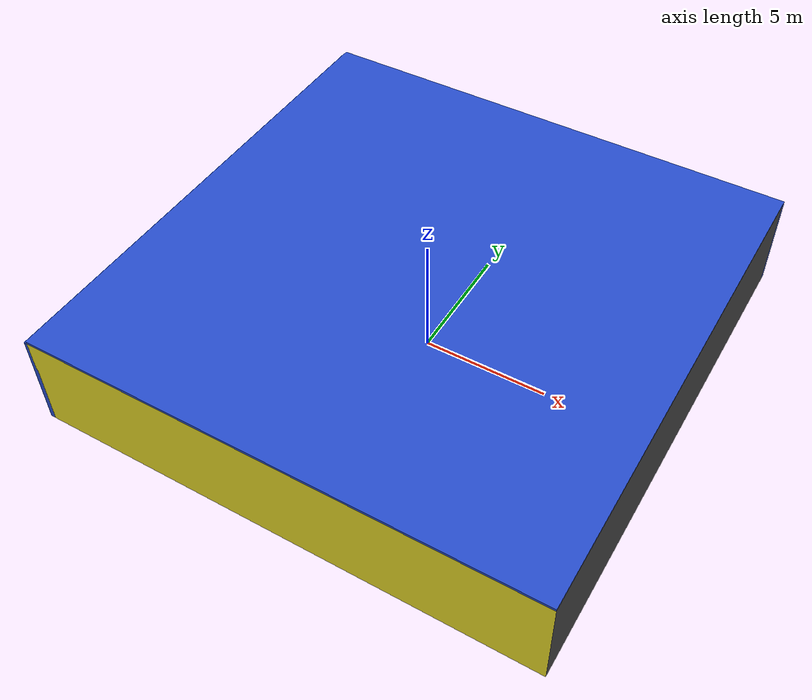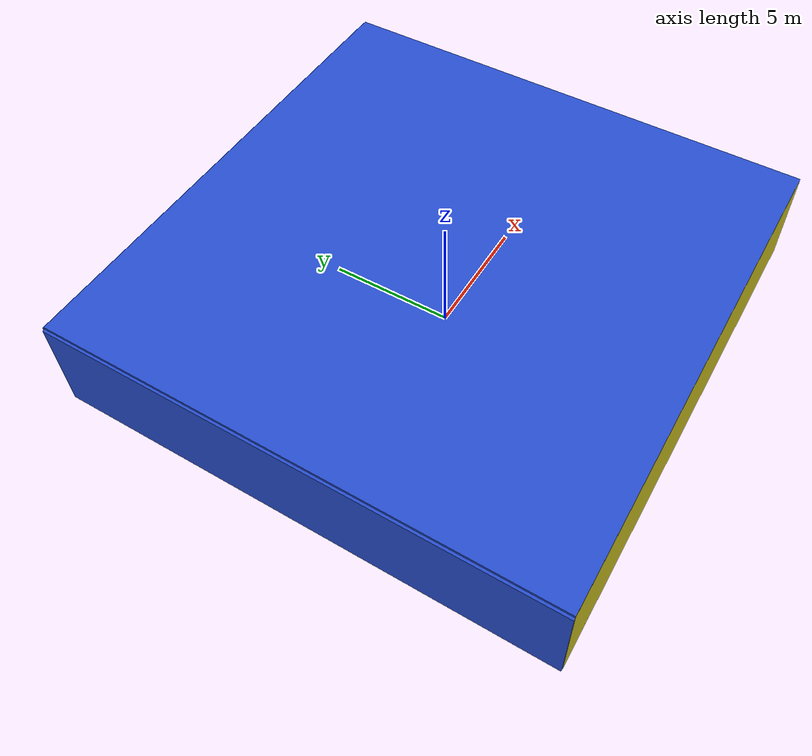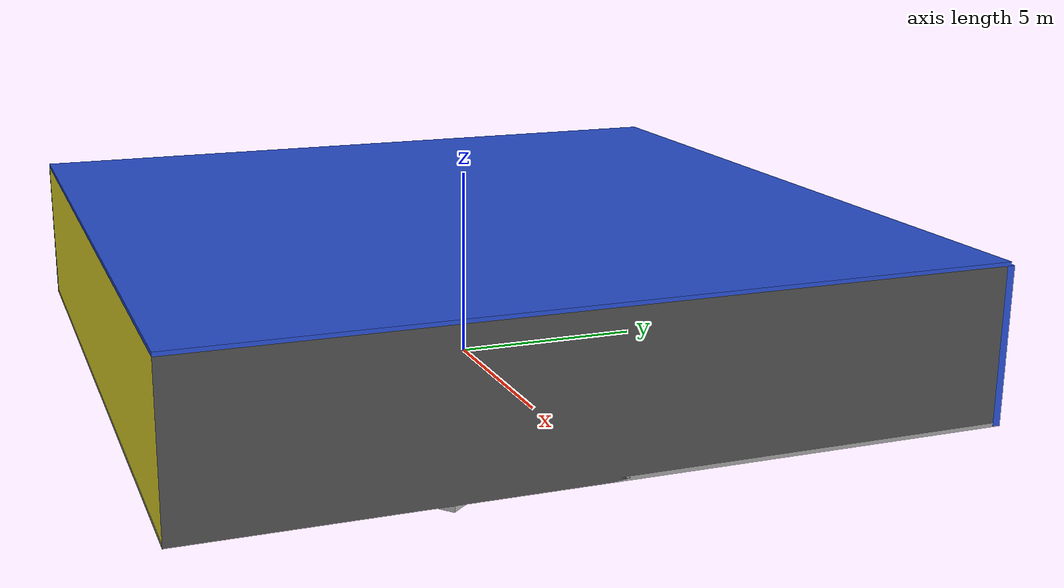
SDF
<sdf version="1.4">
 <world name="default">
  <physics type="ode">
   <max_step_size>0.001</max_step_size>
   <real_time_factor>1</real_time_factor>
   <real_time_update_rate>1000</real_time_update_rate>
   <gravity>0 0 -9.8</gravity>
  </physics>
  <scene><ambient>0.4 0.4 0.4 1</ambient><background>0.7 0.7 0.7 1</background><shadows>1</shadows></scene>
  <model name="Surrounding">
   <static>1</static>
   <link name="Ceiling">
    <collision name="Ceiling_Collision"><geometry><box><size>20 20 0.1</size></box></geometry></collision>
    <visual name="Ceiling_Visual">
     <geometry><box><size>20 20 0.1</size></box></geometry>
     <material>
      <script><uri>file://media/materials/scripts/gazebo.material</uri><name>Gazebo/Blue</name></script>
     </material>
    </visual>
    <pose>0 0 4.05 0 0 0</pose>
   </link>
   <link name="Wall_South">
    <collision name="Wall_South_Collision">
     <geometry><box><size>20 0 4</size></box></geometry>
     <pose>0 0 2 0 -0 0</pose>
    </collision>
    <visual name="Wall_South_Visual">
     <pose>0 0 2 0 -0 0</pose>
     <geometry><box><size>20 0 4</size></box></geometry>
     <material>
      <script><uri>file://media/materials/scripts/gazebo.material</uri><name>Gazebo/Yellow</name></script>
     </material>
    </visual>
    <velocity_decay><linear>0</linear><angular>0</angular></velocity_decay>
    <pose>0 -10 0 0 -0 0</pose>
   </link>
   <link name="Wall_East">
    <collision name="Wall_21_Collision">
     <geometry><box><size>20 0 4</size></box></geometry>
     <pose>0 0 2 0 -0 0</pose>
    </collision>
    <visual name="Wall_21_Visual">
     <pose>0 0 2 0 -0 0</pose>
     <geometry><box><size>20 0 4</size></box></geometry>
     <material>
      <script><uri>file://media/materials/scripts/gazebo.material</uri><name>Gazebo/Road</name></script>
     </material>
    </visual>
    <velocity_decay><linear>0</linear><angular>0</angular></velocity_decay>
    <pose>10 0 0 0 -0 1.5708</pose>
   </link>
   <link name="Wall_North">
    <collision name="Wall_22_Collision">
     <geometry><box><size>20 0.2 4</size></box></geometry>
     <pose>0 0 2 0 -0 0</pose>
    </collision>
    <visual name="Wall_22_Visual">
     <pose>0 0 2 0 -0 0</pose>
     <geometry><box><size>20 0.2 4</size></box></geometry>
     <material>
      <script><uri>file://media/materials/scripts/gazebo.material</uri><name>Gazebo/BlueLaser</name></script>
     </material>
    </visual>
    <velocity_decay><linear>0</linear><angular>0</angular></velocity_decay>
    <pose>0 10 0 0 -0 0</pose>
   </link>
   <link name="Wall_West">
    <collision name="Wall_23_Collision">
     <geometry><box><size>20 0.2 4</size></box></geometry>
     <pose>0 0 2 0 -0 0</pose>
    </collision>
    <visual name="Wall_23_Visual">
     <pose>0 0 2 0 -0 0</pose>
     <geometry><box><size>20 0.2 4</size></box></geometry>
     <material>
      <script><uri>file://media/materials/scripts/gazebo.material</uri><name>Gazebo/BlueGlow</name></script>
     </material>
    </visual>
    <velocity_decay><linear>0</linear><angular>0</angular></velocity_decay>
    <pose>-10 0 0 0 0 -1.5708</pose>
   </link>
   <link name="Ground_link">
    <collision name="collision">
     <pose>0 0 .05 0 -0 0</pose>
     <geometry><box><size>20 20 0.1</size></box></geometry>
    </collision>
    <visual name="visual">
     <pose>0 0 .05 0 -0 0</pose>
     <geometry><box><size>20 20 0.1</size></box></geometry>
     <material>
      <script><uri>file://media/materials/scripts/gazebo.material</uri><name>Gazebo/GreyGradientSky</name></script>
     </material>
    </visual>
   </link>
   <static>1</static>
  </model>
  <spherical_coordinates>
   <surface_model>EARTH_WGS84</surface_model>
   <latitude_deg>0</latitude_deg>
   <longitude_deg>0</longitude_deg>
   <elevation>0</elevation>
   <heading_deg>0</heading_deg>
  </spherical_coordinates>
  <light name="lightball_0" type="diffuse">
   <diffuse>0.8 0.8 0.8 1</diffuse>
   <specular>0.2 0.2 0.2 1</specular>
   <attenuation>
    <range>100</range>
    <constant>0.7</constant>
    <linear>0.01</linear>
    <quadratic>0.001</quadratic>
   </attenuation>
   <direction>-0.5 0.1 -0.9</direction>
   <pose>-0.556024562873 9.89355754755 2.69777270382 0 0 0</pose>
  </light>
  <light name="lightball_1" type="diffuse">
   <diffuse>0.8 0.8 0.8 1</diffuse>
   <specular>0.2 0.2 0.2 1</specular>
   <attenuation>
    <range>100</range>
    <constant>0.7</constant>
    <linear>0.01</linear>
    <quadratic>0.001</quadratic>
   </attenuation>
   <direction>-0.5 0.1 -0.9</direction>
   <pose>2.95603718087 -2.74076123595 3.40111305222 0 0 0</pose>
  </light>
  <light name="lightball_2" type="diffuse">
   <diffuse>0.8 0.8 0.8 1</diffuse>
   <specular>0.2 0.2 0.2 1</specular>
   <attenuation>
    <range>100</range>
    <constant>0.7</constant>
    <linear>0.01</linear>
    <quadratic>0.001</quadratic>
   </attenuation>
   <direction>-0.5 0.1 -0.9</direction>
   <pose>3.25457611189 -5.74032973432 1.68425356452 0 0 0</pose>
  </light>
  <include>
   <uri>model://textured_shapes</uri>
   <pose>-3.49486476435 -4.11164124162 0 0 0 2.86548426134</pose>
  </include>
  <include><uri>model://cabinet</uri><pose>-1.55020345577 -0.363107265225 0 0 0 2.96674115462</pose></include>
  <include>
   <uri>model://textured_shapes</uri>
   <pose>-1.54501413096 6.94751285452 0 0 0 1.22529109203</pose>
  </include>
  <include>
   <uri>model://robocup_3Dsim_goal</uri>
   <pose>1.97124275387 0.919060583073 0 0 0 1.76160847452</pose>
  </include>
  <include>
   <uri>model://robocup_3Dsim_goal</uri>
   <pose>4.45875384762 -5.21215750664 0 0 0 1.59552297202</pose>
  </include>
  <include>
   <uri>model://textured_shapes</uri>
   <pose>7.5885668258 -2.37232179776 0 0 0 0.699516519768</pose>
  </include>
  <include><uri>model://table</uri><pose>6.44882046973 4.57056163805 0 0 0 2.72175710715</pose></include>
 </world>
</sdf>

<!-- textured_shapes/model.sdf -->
<sdf version="1.6">
  <model name="textured_shapes">
    <pose>0 0 0.5 0 0 0</pose>
    <link name="box">
      <pose>0 -1.5 0 0 0 0</pose>
      <collision name="collision">
        <geometry>
          <box>
            <size>1 1 1</size>
          </box>
        </geometry>
      </collision>
      <visual name="visual">
        <geometry>
          <box>
            <size>1 1 1</size>
          </box>
        </geometry>
        <material>
          <script>
            <uri>model://../model_source/models/textured_shapes/materials/scripts</uri>
            <uri>model://../model_source/models/textured_shapes/materials/textures</uri>
            <name>TexturedShape/Squares</name>
          </script>
        </material>
      </visual>
    </link>
    <link name="sphere">
      <collision name="collision">
        <geometry>
          <sphere>
            <radius>0.5</radius>
          </sphere>
        </geometry>
      </collision>
      <visual name="visual">
        <geometry>
          <sphere>
            <radius>0.5</radius>
          </sphere>
        </geometry>
        <material>
          <script>
            <uri>model://../model_source/models/textured_shapes/materials/scripts</uri>
            <uri>model://../model_source/models/textured_shapes/materials/textures</uri>
            <name>TexturedShape/Squares</name>
          </script>
        </material>
      </visual>
    </link>
    <link name="cylinder">
      <pose>0 1.5 0 0 0 0</pose>
      <collision name="collision">
        <geometry>
          <cylinder>
            <radius>0.5</radius>
            <length>1</length>
          </cylinder>
        </geometry>
      </collision>
      <visual name="visual">
        <geometry>
          <cylinder>
            <radius>0.5</radius>
            <length>1</length>
          </cylinder>
        </geometry>
        <material>
          <script>
            <uri>model://../model_source/models/textured_shapes/materials/scripts</uri>
            <uri>model://../model_source/models/textured_shapes/materials/textures</uri>
            <name>TexturedShape/Squares</name>
          </script>
        </material>
      </visual>
    </link>
  </model>
</sdf>

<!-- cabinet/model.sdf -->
<sdf version="1.5">
  <model name="cabinet">
    <static>true</static>
    <link name="cabinet_bottom_plate">
      <inertial>
        <pose>0 0 -1 0 0 0</pose>
        <inertia>
          <ixx>2.050000</ixx>
          <ixy>0</ixy>
          <ixz>0</ixz>
          <iyy>2.050000</iyy>
          <iyz>0</iyz>
          <izz>2.050000</izz>
        </inertia>
        <mass>25.000000</mass>
      </inertial>
      <collision name="cabinet_bottom_plate_geom">
        <pose>0 0 0.010000 0 0 0</pose>
        <geometry>
          <box>
            <size>0.450000 0.450000 0.020000</size>
          </box>
        </geometry>
      </collision>
      <visual name="cabinet_bottom_plate_geom_visual">
        <pose>0 0 0.010000 0 0 0</pose>
        <geometry>
          <box>
            <size>0.450000 0.450000 0.020000</size>
          </box>
        </geometry>
        <material>
          <script>
            <uri>model://media/materials/scripts/gazebo.material</uri>
            <name>Gazebo/Wood</name>
          </script>
        </material>
      </visual>
      <collision name="cabinet_bottom_plate_geom_cabinet_back_plate">
        <pose>0.235000 0 0.510000 0 0 0</pose>
        <geometry>
          <box>
            <size>0.020000 0.450000 1.020000</size>
          </box>
        </geometry>
      </collision>
      <visual name="cabinet_bottom_plate_geom_cabinet_back_plate_visual">
        <pose>0.235000 0 0.510000 0 0 0</pose>
        <geometry>
          <box>
            <size>0.020000 0.450000 1.020000</size>
          </box>
        </geometry>
        <material>
          <script>
            <uri>model://media/materials/scripts/gazebo.material</uri>
            <name>Gazebo/Wood</name>
          </script>
        </material>
      </visual>
      <collision name="cabinet_bottom_plate_geom_cabinet_left_plate">
        <pose>0 0.235000 0.510000 0 0 0</pose>
        <geometry>
          <box>
            <size>0.450000 0.020000 1.020000</size>
          </box>
        </geometry>
      </collision>
      <visual name="cabinet_bottom_plate_geom_cabinet_left_plate_visual">
        <pose>0 0.235000 0.510000 0 0 0</pose>
        <geometry>
          <box>
            <size>0.450000 0.020000 1.020000</size>
          </box>
        </geometry>
        <material>
          <script>
            <uri>model://media/materials/scripts/gazebo.material</uri>
            <name>Gazebo/Wood</name>
          </script>
        </material>
      </visual>
      <collision name="cabinet_bottom_plate_geom_cabinet_middle_plate">
        <pose>0 0 0.510000 0 0 0</pose>
        <geometry>
          <box>
            <size>0.450000 0.450000 0.020000</size>
          </box>
        </geometry>
      </collision>
      <visual name="cabinet_bottom_plate_geom_cabinet_middle_plate_visual">
        <pose>0 0 0.510000 0 0 0</pose>
        <geometry>
          <box>
            <size>0.450000 0.450000 0.020000</size>
          </box>
        </geometry>
        <material>
          <script>
            <uri>model://media/materials/scripts/gazebo.material</uri>
            <name>Gazebo/Wood</name>
          </script>
        </material>
      </visual>
      <collision name="cabinet_bottom_plate_geom_cabinet_right_plate">
        <pose>0 -0.235000 0.510000 0 0 0</pose>
        <geometry>
          <box>
            <size>0.450000 0.020000 1.020000</size>
          </box>
        </geometry>
      </collision>
      <visual name="cabinet_bottom_plate_geom_cabinet_right_plate_visual">
        <pose>0 -0.235000 0.510000 0 0 0</pose>
        <geometry>
          <box>
            <size>0.450000 0.020000 1.020000</size>
          </box>
        </geometry>
        <material>
          <script>
            <uri>model://media/materials/scripts/gazebo.material</uri>
            <name>Gazebo/Wood</name>
          </script>
        </material>
      </visual>
      <collision name="cabinet_bottom_plate_geom_cabinet_top_plate">
        <pose>0 0 1.010000 0 0 0</pose>
        <geometry>
          <box>
            <size>0.450000 0.450000 0.020000</size>
          </box>
        </geometry>
      </collision>
      <visual name="cabinet_bottom_plate_geom_cabinet_top_plate_visual">
        <pose>0 0 1.010000 0 0 0</pose>
        <geometry>
          <box>
            <size>0.450000 0.450000 0.020000</size>
          </box>
        </geometry>
        <material>
          <script>
            <uri>model://media/materials/scripts/gazebo.material</uri>
            <name>Gazebo/Wood</name>
          </script>
        </material>
      </visual>
    </link>
  </model>
</sdf>

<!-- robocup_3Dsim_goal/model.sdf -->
<sdf version="1.5">
  <model name="robocup_3d_goal">
    <static>true</static>
    <link name="left_post">
      <pose>0 1.05 0.45 0 0 0</pose>
      <collision name="collision">
        <geometry>
          <cylinder>
            <radius>0.05</radius>
            <length>0.9</length>
          </cylinder>
        </geometry>
      </collision>
      <visual name="visual">
        <geometry>
          <cylinder>
            <radius>0.05</radius>
            <length>0.9</length>
          </cylinder>
        </geometry>
        <material>
          <script>
            <uri>file://media/materials/scripts/gazebo.material</uri>
            <name>Gazebo/ZincYellow</name>
          </script>
        </material>
      </visual>
    </link>
    <link name="left_support_horiz_lower">
      <pose>0.30 1.05 0.01 0 0 0</pose>
      <collision name="collision">
        <geometry>
          <box>
            <size>0.50 0.02 0.02</size>
          </box>
        </geometry>
      </collision>
      <visual name="visual">
        <geometry>
          <box>
            <size>0.50 0.02 0.02</size>
          </box>
        </geometry>
        <material>
          <script>
            <uri>file://media/materials/scripts/gazebo.material</uri>
            <name>Gazebo/White</name>
          </script>
        </material>
      </visual>
    </link>
    <link name="left_support_horiz_upper">
      <pose>0.30 1.05 0.79 0 0 0</pose>
      <collision name="collision">
        <geometry>
          <box>
            <size>0.50 0.02 0.02</size>
          </box>
        </geometry>
      </collision>
      <visual name="visual">
        <geometry>
          <box>
            <size>0.50 0.02 0.02</size>
          </box>
        </geometry>
        <material>
          <script>
            <uri>file://media/materials/scripts/gazebo.material</uri>
            <name>Gazebo/White</name>
          </script>
        </material>
      </visual>
    </link>
    <link name="left_support_vertical">
      <pose>0.56 1.05 0.4 0 1.5708 0</pose>
      <collision name="collision">
        <geometry>
          <box>
            <size>0.80 0.02 0.02</size>
          </box>
        </geometry>
      </collision>
      <visual name="visual">
        <geometry>
          <box>
            <size>0.80 0.02 0.02</size>
          </box>
        </geometry>
        <material>
          <script>
            <uri>file://media/materials/scripts/gazebo.material</uri>
            <name>Gazebo/White</name>
          </script>
        </material>
      </visual>
    </link>
    <link name="right_support_horiz_lower">
      <pose>0.30 -1.05 0.01 0 0 0</pose>
      <collision name="collision">
        <geometry>
          <box>
            <size>0.50 0.02 0.02</size>
          </box>
        </geometry>
      </collision>
      <visual name="visual">
        <geometry>
          <box>
            <size>0.50 0.02 0.02</size>
          </box>
        </geometry>
        <material>
          <script>
            <uri>file://media/materials/scripts/gazebo.material</uri>
            <name>Gazebo/White</name>
          </script>
        </material>
      </visual>
    </link>
    <link name="right_support_horiz_upper">
      <pose>0.30 -1.05 0.79 0 0 0</pose>
      <collision name="collision">
        <geometry>
          <box>
            <size>0.50 0.02 0.02</size>
          </box>
        </geometry>
      </collision>
      <visual name="visual">
        <geometry>
          <box>
            <size>0.50 0.02 0.02</size>
          </box>
        </geometry>
        <material>
          <script>
            <uri>file://media/materials/scripts/gazebo.material</uri>
            <name>Gazebo/White</name>
          </script>
        </material>
      </visual>
    </link>
    <link name="right_support_vertical">
      <pose>0.56 -1.05 0.4 0 1.5708 0</pose>
      <collision name="collision">
        <geometry>
          <box>
            <size>0.80 0.02 0.02</size>
          </box>
        </geometry>
      </collision>
      <visual name="visual">
        <geometry>
          <box>
            <size>0.80 0.02 0.02</size>
          </box>
        </geometry>
        <material>
          <script>
            <uri>file://media/materials/scripts/gazebo.material</uri>
            <name>Gazebo/White</name>
          </script>
        </material>
      </visual>
    </link>
    <link name="center_support_horiz_lower">
      <pose>0.56 0 0.01 0 1.5708 0</pose>
      <collision name="collision">
        <geometry>
          <box>
            <size>0.02 2.08 0.02</size>
          </box>
        </geometry>
      </collision>
      <visual name="visual">
        <geometry>
          <box>
            <size>0.02 2.08 0.02</size>
          </box>
        </geometry>
        <material>
          <script>
            <uri>file://media/materials/scripts/gazebo.material</uri>
            <name>Gazebo/White</name>
          </script>
        </material>
      </visual>
    </link>
    <link name="center_support_horiz_upper">
      <pose>0.56 0 0.79 0 1.5708 0</pose>
      <collision name="collision">
        <geometry>
          <box>
            <size>0.02 2.08 0.02</size>
          </box>
        </geometry>
      </collision>
      <visual name="visual">
        <geometry>
          <box>
            <size>0.02 2.08 0.02</size>
          </box>
        </geometry>
        <material>
          <script>
            <uri>file://media/materials/scripts/gazebo.material</uri>
            <name>Gazebo/White</name>
          </script>
        </material>
      </visual>
    </link>
    <link name="right_post">
      <pose>0 -1.05 0.45 0 0 0</pose>
      <collision name="collision">
        <geometry>
          <cylinder>
            <radius>0.05</radius>
            <length>0.9</length>
          </cylinder>
        </geometry>
      </collision>
      <visual name="visual">
        <geometry>
          <cylinder>
            <radius>0.05</radius>
            <length>0.9</length>
          </cylinder>
        </geometry>
        <material>
          <script>
            <uri>file://media/materials/scripts/gazebo.material</uri>
            <name>Gazebo/ZincYellow</name>
          </script>
        </material>
      </visual>
    </link>
    <link name="crossbar">
      <pose>0 0 0.85 1.57 1.57 0</pose>
      <collision name="collision">
        <geometry>
          <cylinder>
            <radius>0.05</radius>
            <length>2.0</length>
          </cylinder>
        </geometry>
      </collision>
      <visual name="visual">
        <geometry>
          <cylinder>
            <radius>0.05</radius>
            <length>2.0</length>
          </cylinder>
        </geometry>
        <material>
          <script>
            <uri>file://media/materials/scripts/gazebo.material</uri>
            <name>Gazebo/ZincYellow</name>
          </script>
        </material>
      </visual>
    </link>
    <link name="center_net">
      <pose>0.56 0 0.40 0 0 0</pose>
      <collision name="collision">
        <geometry>
          <box>
            <size>0.01 2.1 0.80</size>
          </box>
        </geometry>
      </collision>
      <visual name="visual">
        <geometry>
          <box>
            <size>0.01 2.1 0.80</size>
          </box>
        </geometry>
        <material>
          <script>
            <uri>model://../model_source/models/robocup09_spl_field/materials/scripts/</uri>
            <uri>model://../model_source/models/robocup09_spl_field/materials/textures/</uri>
            <name>RoboCup/Net</name>
          </script>
        </material>
      </visual>
    </link>
    <link name="left_net">
      <pose>0.30 1.05 0.40 0 0 0</pose>
      <collision name="collision">
        <geometry>
          <box>
            <size>0.50 0.01 0.76</size>
          </box>
        </geometry>
      </collision>
      <visual name="visual">
        <geometry>
          <box>
            <size>0.50 0.01 0.76</size>
          </box>
        </geometry>
        <material>
          <script>
            <uri>model://../model_source/models/robocup09_spl_field/materials/scripts/</uri>
            <uri>model://../model_source/models/robocup09_spl_field/materials/textures/</uri>
            <name>RoboCup/Net</name>
          </script>
        </material>
      </visual>
    </link>
    <link name="right_net">
      <pose>0.30 -1.05 0.40 0 0 0</pose>
      <collision name="collision">
        <geometry>
          <box>
            <size>0.50 0.01 0.76</size>
          </box>
        </geometry>
      </collision>
      <visual name="visual">
        <geometry>
          <box>
            <size>0.50 0.01 0.76</size>
          </box>
        </geometry>
        <material>
          <script>
            <uri>model://../model_source/models/robocup09_spl_field/materials/scripts/</uri>
            <uri>model://../model_source/models/robocup09_spl_field/materials/textures/</uri>
            <name>RoboCup/Net</name>
          </script>
        </material>
      </visual>
    </link>
  </model>
</sdf>

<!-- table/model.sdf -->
<sdf version="1.5">
  <model name="table">
    <static>true</static>
    <link name="link">
      <collision name="surface">
        <pose>0 0 1.0 0 0 0</pose>
        <geometry>
          <box>
            <size>1.5 0.8 0.03</size>
          </box>
        </geometry>
        <surface>
          <friction>
            <ode>
              <mu>0.6</mu>
              <mu2>0.6</mu2>
            </ode>
          </friction>
        </surface>
      </collision>
      <visual name="visual1">
        <pose>0 0 1.0 0 0 0</pose>
        <geometry>
          <box>
            <size>1.5 0.8 0.03</size>
          </box>
        </geometry>
        <material>
          <script>
            <uri>model://media/materials/scripts/gazebo.material</uri>
            <name>Gazebo/Wood</name>
          </script>
        </material>
      </visual>
      <collision name="front_left_leg">
        <pose>0.68 0.38 0.5 0 0 0</pose>
        <geometry>
          <cylinder>
            <radius>0.02</radius>
            <length>1.0</length>
          </cylinder>
        </geometry>
      </collision>
      <visual name="front_left_leg">
        <pose>0.68 0.38 0.5 0 0 0</pose>
        <geometry>
          <cylinder>
            <radius>0.02</radius>
            <length>1.0</length>
          </cylinder>
        </geometry>
        <material>
          <script>
            <uri>model://media/materials/scripts/gazebo.material</uri>
            <name>Gazebo/Grey</name>
          </script>
        </material>
      </visual>
      <collision name="front_right_leg">
        <pose>0.68 -0.38 0.5 0 0 0</pose>
        <geometry>
          <cylinder>
            <radius>0.02</radius>
            <length>1.0</length>
          </cylinder>
        </geometry>
      </collision>
      <visual name="front_right_leg">
        <pose>0.68 -0.38 0.5 0 0 0</pose>
        <geometry>
          <cylinder>
            <radius>0.02</radius>
            <length>1.0</length>
          </cylinder>
        </geometry>
        <material>
          <script>
            <uri>model://media/materials/scripts/gazebo.material</uri>
            <name>Gazebo/Grey</name>
          </script>
        </material>
      </visual>
      <collision name="back_right_leg">
        <pose>-0.68 -0.38 0.5 0 0 0</pose>
        <geometry>
          <cylinder>
            <radius>0.02</radius>
            <length>1.0</length>
          </cylinder>
        </geometry>
      </collision>
      <visual name="back_right_leg">
        <pose>-0.68 -0.38 0.5 0 0 0</pose>
        <geometry>
          <cylinder>
            <radius>0.02</radius>
            <length>1.0</length>
          </cylinder>
        </geometry>
        <material>
          <script>
            <uri>model://media/materials/scripts/gazebo.material</uri>
            <name>Gazebo/Grey</name>
          </script>
        </material>
      </visual>
      <collision name="back_left_leg">
        <pose>-0.68 0.38 0.5 0 0 0</pose>
        <geometry>
          <cylinder>
            <radius>0.02</radius>
            <length>1.0</length>
          </cylinder>
        </geometry>
      </collision>
      <visual name="back_left_leg">
        <pose>-0.68 0.38 0.5 0 0 0</pose>
        <geometry>
          <cylinder>
            <radius>0.02</radius>
            <length>1.0</length>
          </cylinder>
        </geometry>
        <material>
          <script>
            <uri>model://media/materials/scripts/gazebo.material</uri>
            <name>Gazebo/Grey</name>
          </script>
        </material>
      </visual>
    </link>
  </model>
</sdf>
